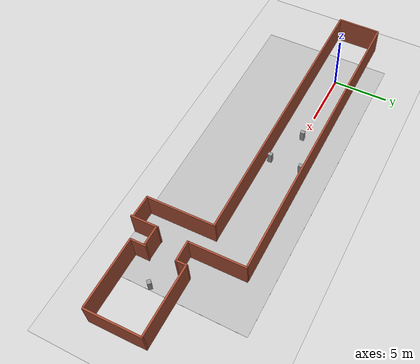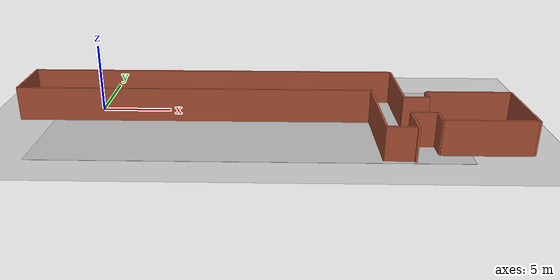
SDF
<sdf version="1.7">
 <world name="default">
  <light name="sun" type="directional">
   <pose>0 0 10 0 -0 0</pose>
   <diffuse>0.8 0.8 0.8 1</diffuse>
   <specular>0.1 0.1 0.1 1</specular>
   <attenuation>
    <range>1000</range>
    <constant>0.9</constant>
    <linear>0.01</linear>
    <quadratic>0.001</quadratic>
   </attenuation>
   <direction>-0.5 0.5 -1</direction>
   <spot><inner_angle>0</inner_angle><outer_angle>0</outer_angle><falloff>0</falloff></spot>
  </light>
  <model name="ground_plane">
   <static>1</static>
   <link name="link">
    <collision name="collision">
     <geometry><plane><normal>0 0 1</normal><size>100 100</size></plane></geometry>
     <surface><friction><ode><mu>100</mu><mu2>50</mu2></ode></friction></surface>
    </collision>
    <visual name="visual">
     <cast_shadows>0</cast_shadows>
     <geometry><plane><normal>0 0 1</normal><size>100 100</size></plane></geometry>
     <material>
      <script><uri>file://media/materials/scripts/gazebo.material</uri><name>Gazebo/Grey</name></script>
     </material>
    </visual>
   </link>
  </model>
  <gravity>0 0 -9.8</gravity>
  <magnetic_field>6e-06 2.3e-05 -4.2e-05</magnetic_field>
  <atmosphere type="adiabatic"/>
  <physics name="default_physics" default="0" type="ode">
   <max_step_size>0.001</max_step_size>
   <real_time_factor>1</real_time_factor>
   <real_time_update_rate>1000</real_time_update_rate>
  </physics>
  <scene><ambient>0.4 0.4 0.4 1</ambient><background>0.7 0.7 0.7 1</background><shadows>1</shadows></scene>
  <spherical_coordinates>
   <surface_model>EARTH_WGS84</surface_model>
   <latitude_deg>0</latitude_deg>
   <longitude_deg>0</longitude_deg>
   <elevation>0</elevation>
   <heading_deg>0</heading_deg>
  </spherical_coordinates>
  <audio><device>default</device></audio>
  <model name="my_ground_plane_0">
   <static>1</static>
   <link name="link">
    <collision name="collision">
     <geometry><plane><normal>0 0 1</normal><size>28.8 12</size></plane></geometry>
     <surface><friction><ode><mu>100</mu><mu2>50</mu2></ode></friction></surface>
    </collision>
    <visual name="visual">
     <cast_shadows>0</cast_shadows>
     <geometry><plane><normal>0 0 1</normal><size>28.8 12</size></plane></geometry>
     <material>
      <script>
       <uri>model://my_ground_plane/materials/scripts</uri>
       <uri>model://my_ground_plane/materials/textures/</uri>
       <name>MyGroundPlane/Image</name>
      </script>
     </material>
    </visual>
   </link>
   <pose>11.2785 -2.18868 0 0 -0 0</pose>
  </model>
  <light name="user_directional_light_0" type="directional">
   <pose>11.0345 -13.0266 1 0 -0 0</pose>
   <diffuse>0.5 0.5 0.5 1</diffuse>
   <specular>0.1 0.1 0.1 1</specular>
   <direction>0.1 0.1 -0.9</direction>
   <attenuation>
    <range>20</range>
    <constant>0.5</constant>
    <linear>0.01</linear>
    <quadratic>0.001</quadratic>
   </attenuation>
   <spot><inner_angle>0</inner_angle><outer_angle>0</outer_angle><falloff>0</falloff></spot>
  </light>
  <light name="user_directional_light_1" type="directional">
   <pose>11.0023 9.1288 1 0 -0 0</pose>
   <diffuse>0.5 0.5 0.5 1</diffuse>
   <specular>0.1 0.1 0.1 1</specular>
   <direction>0.1 0.1 -0.9</direction>
   <attenuation>
    <range>20</range>
    <constant>0.5</constant>
    <linear>0.01</linear>
    <quadratic>0.001</quadratic>
   </attenuation>
   <spot><inner_angle>0</inner_angle><outer_angle>0</outer_angle><falloff>0</falloff></spot>
  </light>
  <model name="first_box_0">
   <link name="link">
    <inertial>
     <mass>0.118815</mass>
     <inertia>
      <ixx>0.011267</ixx>
      <ixy>0</ixy>
      <ixz>0</ixz>
      <iyy>0.0109849</iyy>
      <iyz>0</iyz>
      <izz>0.00244943</izz>
     </inertia>
    </inertial>
    <visual name="visual">
     <geometry><box><size>0.319958 0.371401 1</size></box></geometry>
     <material>
      <script><name>Gazebo/Grey</name><uri>file://media/materials/scripts/gazebo.material</uri></script>
      <shader type="pixel"><normal_map>__default__</normal_map></shader>
     </material>
    </visual>
    <collision name="collision">
     <geometry><box><size>0.330829 0.371401 1</size></box></geometry>
     <surface>
      <friction>
       <ode><mu>1</mu><mu2>1</mu2><fdir1>0 0 0</fdir1><slip1>0</slip1><slip2>0</slip2></ode>
       <torsional>
        <coefficient>1</coefficient>
        <patch_radius>0</patch_radius>
        <surface_radius>0</surface_radius>
        <use_patch_radius>1</use_patch_radius>
        <ode><slip>0</slip></ode>
       </torsional>
      </friction>
      <bounce><restitution_coefficient>0</restitution_coefficient><threshold>1e+06</threshold></bounce>
      <contact>
       <collide_without_contact>0</collide_without_contact>
       <collide_without_contact_bitmask>1</collide_without_contact_bitmask>
       <collide_bitmask>1</collide_bitmask>
       <ode>
        <soft_cfm>0</soft_cfm>
        <soft_erp>0.2</soft_erp>
        <kp>1e+13</kp>
        <kd>1</kd>
        <max_vel>0.01</max_vel>
        <min_depth>0</min_depth>
       </ode>
       <bullet>
        <split_impulse>1</split_impulse>
        <split_impulse_penetration_threshold>-0.01</split_impulse_penetration_threshold>
        <soft_cfm>0</soft_cfm>
        <soft_erp>0.2</soft_erp>
        <kp>1e+13</kp>
        <kd>1</kd>
       </bullet>
      </contact>
     </surface>
    </collision>
   </link>
   <static>0</static>
   <pose>7.54336 -0.032332 0.5 0 3e-06 0.000219</pose>
  </model>
  <model name="first_box_0_clone">
   <link name="link">
    <inertial>
     <mass>0.118815</mass>
     <inertia>
      <ixx>0.011267</ixx>
      <ixy>0</ixy>
      <ixz>0</ixz>
      <iyy>0.0109849</iyy>
      <iyz>0</iyz>
      <izz>0.00244943</izz>
     </inertia>
    </inertial>
    <visual name="visual">
     <geometry><box><size>0.319958 0.371401 1</size></box></geometry>
     <material>
      <script><name>Gazebo/Grey</name><uri>file://media/materials/scripts/gazebo.material</uri></script>
      <shader type="pixel"><normal_map>__default__</normal_map></shader>
     </material>
    </visual>
    <collision name="collision">
     <geometry><box><size>0.330829 0.371401 1</size></box></geometry>
     <surface>
      <friction>
       <ode><mu>1</mu><mu2>1</mu2><fdir1>0 0 0</fdir1><slip1>0</slip1><slip2>0</slip2></ode>
       <torsional>
        <coefficient>1</coefficient>
        <patch_radius>0</patch_radius>
        <surface_radius>0</surface_radius>
        <use_patch_radius>1</use_patch_radius>
        <ode><slip>0</slip></ode>
       </torsional>
      </friction>
      <bounce><restitution_coefficient>0</restitution_coefficient><threshold>1e+06</threshold></bounce>
      <contact>
       <collide_without_contact>0</collide_without_contact>
       <collide_without_contact_bitmask>1</collide_without_contact_bitmask>
       <collide_bitmask>1</collide_bitmask>
       <ode>
        <soft_cfm>0</soft_cfm>
        <soft_erp>0.2</soft_erp>
        <kp>1e+13</kp>
        <kd>1</kd>
        <max_vel>0.01</max_vel>
        <min_depth>0</min_depth>
       </ode>
       <bullet>
        <split_impulse>1</split_impulse>
        <split_impulse_penetration_threshold>-0.01</split_impulse_penetration_threshold>
        <soft_cfm>0</soft_cfm>
        <soft_erp>0.2</soft_erp>
        <kp>1e+13</kp>
        <kd>1</kd>
       </bullet>
      </contact>
     </surface>
    </collision>
   </link>
   <static>0</static>
   <pose>10.8644 1.26843 0.500001 -0 -3e-06 0.00037</pose>
  </model>
  <model name="first_box_0_clone_0">
   <link name="link">
    <inertial>
     <mass>0.118815</mass>
     <inertia>
      <ixx>0.011267</ixx>
      <ixy>0</ixy>
      <ixz>0</ixz>
      <iyy>0.0109849</iyy>
      <iyz>0</iyz>
      <izz>0.00244943</izz>
     </inertia>
    </inertial>
    <visual name="visual">
     <geometry><box><size>0.319958 0.371401 1</size></box></geometry>
     <material>
      <script><name>Gazebo/Grey</name><uri>file://media/materials/scripts/gazebo.material</uri></script>
      <shader type="pixel"><normal_map>__default__</normal_map></shader>
     </material>
    </visual>
    <collision name="collision">
     <geometry><box><size>0.330829 0.371401 1</size></box></geometry>
     <surface>
      <friction>
       <ode><mu>1</mu><mu2>1</mu2><fdir1>0 0 0</fdir1><slip1>0</slip1><slip2>0</slip2></ode>
       <torsional>
        <coefficient>1</coefficient>
        <patch_radius>0</patch_radius>
        <surface_radius>0</surface_radius>
        <use_patch_radius>1</use_patch_radius>
        <ode><slip>0</slip></ode>
       </torsional>
      </friction>
      <bounce><restitution_coefficient>0</restitution_coefficient><threshold>1e+06</threshold></bounce>
      <contact>
       <collide_without_contact>0</collide_without_contact>
       <collide_without_contact_bitmask>1</collide_without_contact_bitmask>
       <collide_bitmask>1</collide_bitmask>
       <ode>
        <soft_cfm>0</soft_cfm>
        <soft_erp>0.2</soft_erp>
        <kp>1e+13</kp>
        <kd>1</kd>
        <max_vel>0.01</max_vel>
        <min_depth>0</min_depth>
       </ode>
       <bullet>
        <split_impulse>1</split_impulse>
        <split_impulse_penetration_threshold>-0.01</split_impulse_penetration_threshold>
        <soft_cfm>0</soft_cfm>
        <soft_erp>0.2</soft_erp>
        <kp>1e+13</kp>
        <kd>1</kd>
       </bullet>
      </contact>
     </surface>
    </collision>
   </link>
   <static>0</static>
   <pose>10.9218 -1.53465 0.499998 -4e-06 6e-06 0.000118</pose>
  </model>
  <model name="9F">
   <link name="Wall_10">
    <pose>-4.68691 0.704536 0 0 -0 0</pose>
    <inertial>
     <inertia><ixx>0</ixx><ixy>0</ixy><ixz>0</ixz><iyy>0</iyy><iyz>0</iyz><izz>0</izz></inertia>
     <mass>0</mass>
    </inertial>
    <visual name="Wall_10_Visual">
     <pose>0 0 1.25 0 -0 0</pose>
     <geometry><box><size>25.4879 0.15 2.5</size></box></geometry>
     <material>
      <script><uri>file://media/materials/scripts/gazebo.material</uri><name>Gazebo/Bricks</name></script>
      <ambient>1 1 1 1</ambient>
      <shader type="pixel"/>
     </material>
     <meta><layer>0</layer></meta>
    </visual>
    <collision name="Wall_10_Collision">
     <pose>0 0 1.25 0 -0 0</pose>
     <geometry><box><size>25.4879 0.15 2.5</size></box></geometry>
     <surface>
      <friction>
       <ode><mu>1</mu><mu2>1</mu2><fdir1>0 0 0</fdir1><slip1>0</slip1><slip2>0</slip2></ode>
       <torsional>
        <coefficient>1</coefficient>
        <patch_radius>0</patch_radius>
        <surface_radius>0</surface_radius>
        <use_patch_radius>1</use_patch_radius>
        <ode><slip>0</slip></ode>
       </torsional>
      </friction>
      <bounce><restitution_coefficient>0</restitution_coefficient><threshold>1e+06</threshold></bounce>
      <contact>
       <collide_without_contact>0</collide_without_contact>
       <collide_without_contact_bitmask>1</collide_without_contact_bitmask>
       <collide_bitmask>1</collide_bitmask>
       <ode>
        <soft_cfm>0</soft_cfm>
        <soft_erp>0.2</soft_erp>
        <kp>1e+13</kp>
        <kd>1</kd>
        <max_vel>0.01</max_vel>
        <min_depth>0</min_depth>
       </ode>
       <bullet>
        <split_impulse>1</split_impulse>
        <split_impulse_penetration_threshold>-0.01</split_impulse_penetration_threshold>
        <soft_cfm>0</soft_cfm>
        <soft_erp>0.2</soft_erp>
        <kp>1e+13</kp>
        <kd>1</kd>
       </bullet>
      </contact>
     </surface>
    </collision>
   </link>
   <link name="Wall_20">
    <pose>10.0454 2.13176 0 0 -0 1.58423</pose>
    <inertial>
     <inertia><ixx>0</ixx><ixy>0</ixy><ixz>0</ixz><iyy>0</iyy><iyz>0</iyz><izz>0</izz></inertia>
     <mass>0</mass>
    </inertial>
    <visual name="Wall_20_Visual">
     <pose>0 0 1.25 0 -0 0</pose>
     <geometry><box><size>4.88983 0.15 2.39214</size></box></geometry>
     <material>
      <script><uri>file://media/materials/scripts/gazebo.material</uri><name>Gazebo/Bricks</name></script>
      <ambient>1 1 1 1</ambient>
      <shader type="pixel"/>
     </material>
     <meta><layer>0</layer></meta>
    </visual>
    <collision name="Wall_20_Collision">
     <pose>0 0 1.25 0 -0 0</pose>
     <geometry><box><size>4.88983 0.15 2.39214</size></box></geometry>
     <surface>
      <friction>
       <ode><mu>1</mu><mu2>1</mu2><fdir1>0 0 0</fdir1><slip1>0</slip1><slip2>0</slip2></ode>
       <torsional>
        <coefficient>1</coefficient>
        <patch_radius>0</patch_radius>
        <surface_radius>0</surface_radius>
        <use_patch_radius>1</use_patch_radius>
        <ode><slip>0</slip></ode>
       </torsional>
      </friction>
      <bounce><restitution_coefficient>0</restitution_coefficient><threshold>1e+06</threshold></bounce>
      <contact>
       <collide_without_contact>0</collide_without_contact>
       <collide_without_contact_bitmask>1</collide_without_contact_bitmask>
       <collide_bitmask>1</collide_bitmask>
       <ode>
        <soft_cfm>0</soft_cfm>
        <soft_erp>0.2</soft_erp>
        <kp>1e+13</kp>
        <kd>1</kd>
        <max_vel>0.01</max_vel>
        <min_depth>0</min_depth>
       </ode>
       <bullet>
        <split_impulse>1</split_impulse>
        <split_impulse_penetration_threshold>-0.01</split_impulse_penetration_threshold>
        <soft_cfm>0</soft_cfm>
        <soft_erp>0.2</soft_erp>
        <kp>1e+13</kp>
        <kd>1</kd>
       </bullet>
      </contact>
     </surface>
    </collision>
   </link>
   <link name="Wall_20_clone">
    <pose>8.02593 -2.23081 0 0 -0 1.58423</pose>
    <inertial>
     <inertia><ixx>0</ixx><ixy>0</ixy><ixz>0</ixz><iyy>0</iyy><iyz>0</iyz><izz>0</izz></inertia>
     <mass>0</mass>
    </inertial>
    <visual name="Wall_20_Visual">
     <pose>0 0 1.25 0 -0 0</pose>
     <geometry><box><size>6.0811 0.15 2.39214</size></box></geometry>
     <material>
      <script><uri>file://media/materials/scripts/gazebo.material</uri><name>Gazebo/Bricks</name></script>
      <ambient>1 1 1 1</ambient>
      <shader type="pixel"/>
     </material>
     <meta><layer>0</layer></meta>
    </visual>
    <collision name="Wall_20_Collision">
     <pose>0 0 1.25 0 -0 0</pose>
     <geometry><box><size>6.0811 0.15 2.39214</size></box></geometry>
     <surface>
      <friction>
       <ode><mu>1</mu><mu2>1</mu2><fdir1>0 0 0</fdir1><slip1>0</slip1><slip2>0</slip2></ode>
       <torsional>
        <coefficient>1</coefficient>
        <patch_radius>0</patch_radius>
        <surface_radius>0</surface_radius>
        <use_patch_radius>1</use_patch_radius>
        <ode><slip>0</slip></ode>
       </torsional>
      </friction>
      <bounce><restitution_coefficient>0</restitution_coefficient><threshold>1e+06</threshold></bounce>
      <contact>
       <collide_without_contact>0</collide_without_contact>
       <collide_without_contact_bitmask>1</collide_without_contact_bitmask>
       <collide_bitmask>1</collide_bitmask>
       <ode>
        <soft_cfm>0</soft_cfm>
        <soft_erp>0.2</soft_erp>
        <kp>1e+13</kp>
        <kd>1</kd>
        <max_vel>0.01</max_vel>
        <min_depth>0</min_depth>
       </ode>
       <bullet>
        <split_impulse>1</split_impulse>
        <split_impulse_penetration_threshold>-0.01</split_impulse_penetration_threshold>
        <soft_cfm>0</soft_cfm>
        <soft_erp>0.2</soft_erp>
        <kp>1e+13</kp>
        <kd>1</kd>
       </bullet>
      </contact>
     </surface>
    </collision>
   </link>
   <link name="Wall_20_clone_0">
    <pose>10.9444 -0.401375 0 0 0 -3.12541</pose>
    <inertial>
     <inertia><ixx>0</ixx><ixy>0</ixy><ixz>0</ixz><iyy>0</iyy><iyz>0</iyz><izz>0</izz></inertia>
     <mass>0</mass>
    </inertial>
    <visual name="Wall_20_Visual">
     <pose>0 0 1.25 0 -0 0</pose>
     <geometry><box><size>1.8756 0.15 2.39214</size></box></geometry>
     <material>
      <script><uri>file://media/materials/scripts/gazebo.material</uri><name>Gazebo/Bricks</name></script>
      <ambient>1 1 1 1</ambient>
      <shader type="pixel"/>
     </material>
     <meta><layer>0</layer></meta>
    </visual>
    <collision name="Wall_20_Collision">
     <pose>0 0 1.25 0 -0 0</pose>
     <geometry><box><size>1.8756 0.15 2.39214</size></box></geometry>
     <surface>
      <friction>
       <ode><mu>1</mu><mu2>1</mu2><fdir1>0 0 0</fdir1><slip1>0</slip1><slip2>0</slip2></ode>
       <torsional>
        <coefficient>1</coefficient>
        <patch_radius>0</patch_radius>
        <surface_radius>0</surface_radius>
        <use_patch_radius>1</use_patch_radius>
        <ode><slip>0</slip></ode>
       </torsional>
      </friction>
      <bounce><restitution_coefficient>0</restitution_coefficient><threshold>1e+06</threshold></bounce>
      <contact>
       <collide_without_contact>0</collide_without_contact>
       <collide_without_contact_bitmask>1</collide_without_contact_bitmask>
       <collide_bitmask>1</collide_bitmask>
       <ode>
        <soft_cfm>0</soft_cfm>
        <soft_erp>0.2</soft_erp>
        <kp>1e+13</kp>
        <kd>1</kd>
        <max_vel>0.01</max_vel>
        <min_depth>0</min_depth>
       </ode>
       <bullet>
        <split_impulse>1</split_impulse>
        <split_impulse_penetration_threshold>-0.01</split_impulse_penetration_threshold>
        <soft_cfm>0</soft_cfm>
        <soft_erp>0.2</soft_erp>
        <kp>1e+13</kp>
        <kd>1</kd>
       </bullet>
      </contact>
     </surface>
    </collision>
   </link>
   <link name="Wall_20_clone_0_clone">
    <pose>9.04606 -5.24157 0 0 -0 3.12836</pose>
    <inertial>
     <inertia><ixx>0</ixx><ixy>0</ixy><ixz>0</ixz><iyy>0</iyy><iyz>0</iyz><izz>0</izz></inertia>
     <mass>0</mass>
    </inertial>
    <visual name="Wall_20_Visual">
     <pose>0 0 1.25 0 -0 0</pose>
     <geometry><box><size>2.02972 0.15 2.39214</size></box></geometry>
     <material>
      <script><uri>file://media/materials/scripts/gazebo.material</uri><name>Gazebo/Bricks</name></script>
      <ambient>1 1 1 1</ambient>
      <shader type="pixel"/>
     </material>
     <meta><layer>0</layer></meta>
    </visual>
    <collision name="Wall_20_Collision">
     <pose>0 0 1.25 0 -0 0</pose>
     <geometry><box><size>2.02972 0.15 2.39214</size></box></geometry>
     <surface>
      <friction>
       <ode><mu>1</mu><mu2>1</mu2><fdir1>0 0 0</fdir1><slip1>0</slip1><slip2>0</slip2></ode>
       <torsional>
        <coefficient>1</coefficient>
        <patch_radius>0</patch_radius>
        <surface_radius>0</surface_radius>
        <use_patch_radius>1</use_patch_radius>
        <ode><slip>0</slip></ode>
       </torsional>
      </friction>
      <bounce><restitution_coefficient>0</restitution_coefficient><threshold>1e+06</threshold></bounce>
      <contact>
       <collide_without_contact>0</collide_without_contact>
       <collide_without_contact_bitmask>1</collide_without_contact_bitmask>
       <collide_bitmask>1</collide_bitmask>
       <ode>
        <soft_cfm>0</soft_cfm>
        <soft_erp>0.2</soft_erp>
        <kp>1e+13</kp>
        <kd>1</kd>
        <max_vel>0.01</max_vel>
        <min_depth>0</min_depth>
       </ode>
       <bullet>
        <split_impulse>1</split_impulse>
        <split_impulse_penetration_threshold>-0.01</split_impulse_penetration_threshold>
        <soft_cfm>0</soft_cfm>
        <soft_erp>0.2</soft_erp>
        <kp>1e+13</kp>
        <kd>1</kd>
       </bullet>
      </contact>
     </surface>
    </collision>
   </link>
   <link name="Wall_20_clone_1">
    <pose>11.7838 0.070845 0 0 -0 1.58423</pose>
    <inertial>
     <inertia><ixx>0</ixx><ixy>0</ixy><ixz>0</ixz><iyy>0</iyy><iyz>0</iyz><izz>0</izz></inertia>
     <mass>0</mass>
    </inertial>
    <visual name="Wall_20_Visual">
     <pose>0 0 1.25 0 -0 0</pose>
     <geometry><box><size>1.00854 0.15 2.39214</size></box></geometry>
     <material>
      <script><uri>file://media/materials/scripts/gazebo.material</uri><name>Gazebo/Bricks</name></script>
      <ambient>1 1 1 1</ambient>
      <shader type="pixel"/>
     </material>
     <meta><layer>0</layer></meta>
    </visual>
    <collision name="Wall_20_Collision">
     <pose>0 0 1.25 0 -0 0</pose>
     <geometry><box><size>1.00854 0.15 2.39214</size></box></geometry>
     <surface>
      <friction>
       <ode><mu>1</mu><mu2>1</mu2><fdir1>0 0 0</fdir1><slip1>0</slip1><slip2>0</slip2></ode>
       <torsional>
        <coefficient>1</coefficient>
        <patch_radius>0</patch_radius>
        <surface_radius>0</surface_radius>
        <use_patch_radius>1</use_patch_radius>
        <ode><slip>0</slip></ode>
       </torsional>
      </friction>
      <bounce><restitution_coefficient>0</restitution_coefficient><threshold>1e+06</threshold></bounce>
      <contact>
       <collide_without_contact>0</collide_without_contact>
       <collide_without_contact_bitmask>1</collide_without_contact_bitmask>
       <collide_bitmask>1</collide_bitmask>
       <ode>
        <soft_cfm>0</soft_cfm>
        <soft_erp>0.2</soft_erp>
        <kp>1e+13</kp>
        <kd>1</kd>
        <max_vel>0.01</max_vel>
        <min_depth>0</min_depth>
       </ode>
       <bullet>
        <split_impulse>1</split_impulse>
        <split_impulse_penetration_threshold>-0.01</split_impulse_penetration_threshold>
        <soft_cfm>0</soft_cfm>
        <soft_erp>0.2</soft_erp>
        <kp>1e+13</kp>
        <kd>1</kd>
       </bullet>
      </contact>
     </surface>
    </collision>
   </link>
   <link name="Wall_20_clone_1_clone">
    <pose>17.8251 -1.91064 0 0 -0 1.58423</pose>
    <inertial>
     <inertia><ixx>0</ixx><ixy>0</ixy><ixz>0</ixz><iyy>0</iyy><iyz>0</iyz><izz>0</izz></inertia>
     <mass>0</mass>
    </inertial>
    <visual name="Wall_20_Visual">
     <pose>0 0 1.25 0 -0 0</pose>
     <geometry><box><size>4.95889 0.15 2.39214</size></box></geometry>
     <material>
      <script><uri>file://media/materials/scripts/gazebo.material</uri><name>Gazebo/Bricks</name></script>
      <ambient>1 1 1 1</ambient>
      <shader type="pixel"/>
     </material>
     <meta><layer>0</layer></meta>
    </visual>
    <collision name="Wall_20_Collision">
     <pose>0 0 1.25 0 -0 0</pose>
     <geometry><box><size>4.95889 0.15 2.39214</size></box></geometry>
     <surface>
      <friction>
       <ode><mu>1</mu><mu2>1</mu2><fdir1>0 0 0</fdir1><slip1>0</slip1><slip2>0</slip2></ode>
       <torsional>
        <coefficient>1</coefficient>
        <patch_radius>0</patch_radius>
        <surface_radius>0</surface_radius>
        <use_patch_radius>1</use_patch_radius>
        <ode><slip>0</slip></ode>
       </torsional>
      </friction>
      <bounce><restitution_coefficient>0</restitution_coefficient><threshold>1e+06</threshold></bounce>
      <contact>
       <collide_without_contact>0</collide_without_contact>
       <collide_without_contact_bitmask>1</collide_without_contact_bitmask>
       <collide_bitmask>1</collide_bitmask>
       <ode>
        <soft_cfm>0</soft_cfm>
        <soft_erp>0.2</soft_erp>
        <kp>1e+13</kp>
        <kd>1</kd>
        <max_vel>0.01</max_vel>
        <min_depth>0</min_depth>
       </ode>
       <bullet>
        <split_impulse>1</split_impulse>
        <split_impulse_penetration_threshold>-0.01</split_impulse_penetration_threshold>
        <soft_cfm>0</soft_cfm>
        <soft_erp>0.2</soft_erp>
        <kp>1e+13</kp>
        <kd>1</kd>
       </bullet>
      </contact>
     </surface>
    </collision>
   </link>
   <link name="Wall_20_clone_1_clone_0">
    <pose>11.7674 -3.69427 0 0 -0 1.58423</pose>
    <inertial>
     <inertia><ixx>0</ixx><ixy>0</ixy><ixz>0</ixz><iyy>0</iyy><iyz>0</iyz><izz>0</izz></inertia>
     <mass>0</mass>
    </inertial>
    <visual name="Wall_20_Visual">
     <pose>0 0 1.25 0 -0 0</pose>
     <geometry><box><size>1.36231 0.15 2.39214</size></box></geometry>
     <material>
      <script><uri>file://media/materials/scripts/gazebo.material</uri><name>Gazebo/Bricks</name></script>
      <ambient>1 1 1 1</ambient>
      <shader type="pixel"/>
     </material>
     <meta><layer>0</layer></meta>
    </visual>
    <collision name="Wall_20_Collision">
     <pose>0 0 1.25 0 -0 0</pose>
     <geometry><box><size>1.36231 0.15 2.39214</size></box></geometry>
     <surface>
      <friction>
       <ode><mu>1</mu><mu2>1</mu2><fdir1>0 0 0</fdir1><slip1>0</slip1><slip2>0</slip2></ode>
       <torsional>
        <coefficient>1</coefficient>
        <patch_radius>0</patch_radius>
        <surface_radius>0</surface_radius>
        <use_patch_radius>1</use_patch_radius>
        <ode><slip>0</slip></ode>
       </torsional>
      </friction>
      <bounce><restitution_coefficient>0</restitution_coefficient><threshold>1e+06</threshold></bounce>
      <contact>
       <collide_without_contact>0</collide_without_contact>
       <collide_without_contact_bitmask>1</collide_without_contact_bitmask>
       <collide_bitmask>1</collide_bitmask>
       <ode>
        <soft_cfm>0</soft_cfm>
        <soft_erp>0.2</soft_erp>
        <kp>1e+13</kp>
        <kd>1</kd>
        <max_vel>0.01</max_vel>
        <min_depth>0</min_depth>
       </ode>
       <bullet>
        <split_impulse>1</split_impulse>
        <split_impulse_penetration_threshold>-0.01</split_impulse_penetration_threshold>
        <soft_cfm>0</soft_cfm>
        <soft_erp>0.2</soft_erp>
        <kp>1e+13</kp>
        <kd>1</kd>
       </bullet>
      </contact>
     </surface>
    </collision>
   </link>
   <link name="Wall_20_clone_1_clone_1">
    <pose>10.0302 -4.23911 0 0 -0 1.58423</pose>
    <inertial>
     <inertia><ixx>0</ixx><ixy>0</ixy><ixz>0</ixz><iyy>0</iyy><iyz>0</iyz><izz>0</izz></inertia>
     <mass>0</mass>
    </inertial>
    <visual name="Wall_20_Visual">
     <pose>0 0 1.25 0 -0 0</pose>
     <geometry><box><size>2.43343 0.15 2.39214</size></box></geometry>
     <material>
      <script><uri>file://media/materials/scripts/gazebo.material</uri><name>Gazebo/Bricks</name></script>
      <ambient>1 1 1 1</ambient>
      <shader type="pixel"/>
     </material>
     <meta><layer>0</layer></meta>
    </visual>
    <collision name="Wall_20_Collision">
     <pose>0 0 1.25 0 -0 0</pose>
     <geometry><box><size>2.43343 0.15 2.39214</size></box></geometry>
     <surface>
      <friction>
       <ode><mu>1</mu><mu2>1</mu2><fdir1>0 0 0</fdir1><slip1>0</slip1><slip2>0</slip2></ode>
       <torsional>
        <coefficient>1</coefficient>
        <patch_radius>0</patch_radius>
        <surface_radius>0</surface_radius>
        <use_patch_radius>1</use_patch_radius>
        <ode><slip>0</slip></ode>
       </torsional>
      </friction>
      <bounce><restitution_coefficient>0</restitution_coefficient><threshold>1e+06</threshold></bounce>
      <contact>
       <collide_without_contact>0</collide_without_contact>
       <collide_without_contact_bitmask>1</collide_without_contact_bitmask>
       <collide_bitmask>1</collide_bitmask>
       <ode>
        <soft_cfm>0</soft_cfm>
        <soft_erp>0.2</soft_erp>
        <kp>1e+13</kp>
        <kd>1</kd>
        <max_vel>0.01</max_vel>
        <min_depth>0</min_depth>
       </ode>
       <bullet>
        <split_impulse>1</split_impulse>
        <split_impulse_penetration_threshold>-0.01</split_impulse_penetration_threshold>
        <soft_cfm>0</soft_cfm>
        <soft_erp>0.2</soft_erp>
        <kp>1e+13</kp>
        <kd>1</kd>
       </bullet>
      </contact>
     </surface>
    </collision>
   </link>
   <link name="Wall_4">
    <pose>-17.3603 2.64522 0 0 -0 1.5708</pose>
    <visual name="Wall_4_Visual">
     <pose>0 0 1.25 0 -0 0</pose>
     <geometry><box><size>3.75 0.15 2.5</size></box></geometry>
     <material>
      <script><uri>file://media/materials/scripts/gazebo.material</uri><name>Gazebo/Bricks</name></script>
      <ambient>1 1 1 1</ambient>
      <shader type="pixel"/>
     </material>
     <meta><layer>0</layer></meta>
    </visual>
    <collision name="Wall_4_Collision">
     <pose>0 0 1.25 0 -0 0</pose>
     <geometry><box><size>3.75 0.15 2.5</size></box></geometry>
     <surface>
      <friction>
       <ode><mu>1</mu><mu2>1</mu2><fdir1>0 0 0</fdir1><slip1>0</slip1><slip2>0</slip2></ode>
       <torsional>
        <coefficient>1</coefficient>
        <patch_radius>0</patch_radius>
        <surface_radius>0</surface_radius>
        <use_patch_radius>1</use_patch_radius>
        <ode><slip>0</slip></ode>
       </torsional>
      </friction>
      <bounce><restitution_coefficient>0</restitution_coefficient><threshold>1e+06</threshold></bounce>
      <contact>
       <collide_without_contact>0</collide_without_contact>
       <collide_without_contact_bitmask>1</collide_without_contact_bitmask>
       <collide_bitmask>1</collide_bitmask>
       <ode>
        <soft_cfm>0</soft_cfm>
        <soft_erp>0.2</soft_erp>
        <kp>1e+13</kp>
        <kd>1</kd>
        <max_vel>0.01</max_vel>
        <min_depth>0</min_depth>
       </ode>
       <bullet>
        <split_impulse>1</split_impulse>
        <split_impulse_penetration_threshold>-0.01</split_impulse_penetration_threshold>
        <soft_cfm>0</soft_cfm>
        <soft_erp>0.2</soft_erp>
        <kp>1e+13</kp>
        <kd>1</kd>
       </bullet>
      </contact>
     </surface>
    </collision>
   </link>
   <link name="Wall_6">
    <pose>-3.72942 4.51625 0 0 -0 0</pose>
    <inertial>
     <inertia><ixx>0</ixx><ixy>0</ixy><ixz>0</ixz><iyy>0</iyy><iyz>0</iyz><izz>0</izz></inertia>
     <mass>0</mass>
    </inertial>
    <visual name="Wall_6_Visual">
     <pose>0 0 1.25 0 -0 0</pose>
     <geometry><box><size>27.3889 0.15 2.5</size></box></geometry>
     <material>
      <script><uri>file://media/materials/scripts/gazebo.material</uri><name>Gazebo/Bricks</name></script>
      <ambient>1 1 1 1</ambient>
      <shader type="pixel"/>
     </material>
     <meta><layer>0</layer></meta>
    </visual>
    <collision name="Wall_6_Collision">
     <pose>0 0 1.25 0 -0 0</pose>
     <geometry><box><size>27.3889 0.15 2.5</size></box></geometry>
     <surface>
      <friction>
       <ode><mu>1</mu><mu2>1</mu2><fdir1>0 0 0</fdir1><slip1>0</slip1><slip2>0</slip2></ode>
       <torsional>
        <coefficient>1</coefficient>
        <patch_radius>0</patch_radius>
        <surface_radius>0</surface_radius>
        <use_patch_radius>1</use_patch_radius>
        <ode><slip>0</slip></ode>
       </torsional>
      </friction>
      <bounce><restitution_coefficient>0</restitution_coefficient><threshold>1e+06</threshold></bounce>
      <contact>
       <collide_without_contact>0</collide_without_contact>
       <collide_without_contact_bitmask>1</collide_without_contact_bitmask>
       <collide_bitmask>1</collide_bitmask>
       <ode>
        <soft_cfm>0</soft_cfm>
        <soft_erp>0.2</soft_erp>
        <kp>1e+13</kp>
        <kd>1</kd>
        <max_vel>0.01</max_vel>
        <min_depth>0</min_depth>
       </ode>
       <bullet>
        <split_impulse>1</split_impulse>
        <split_impulse_penetration_threshold>-0.01</split_impulse_penetration_threshold>
        <soft_cfm>0</soft_cfm>
        <soft_erp>0.2</soft_erp>
        <kp>1e+13</kp>
        <kd>1</kd>
       </bullet>
      </contact>
     </surface>
    </collision>
   </link>
   <link name="Wall_6_clone">
    <pose>14.793 0.489118 0 0 -0 0</pose>
    <inertial>
     <inertia><ixx>0</ixx><ixy>0</ixy><ixz>0</ixz><iyy>0</iyy><iyz>0</iyz><izz>0</izz></inertia>
     <mass>0</mass>
    </inertial>
    <visual name="Wall_6_Visual">
     <pose>0 0 1.25 0 -0 0</pose>
     <geometry><box><size>5.98773 0.15 2.5</size></box></geometry>
     <material>
      <script><uri>file://media/materials/scripts/gazebo.material</uri><name>Gazebo/Bricks</name></script>
      <ambient>1 1 1 1</ambient>
      <shader type="pixel"/>
     </material>
     <meta><layer>0</layer></meta>
    </visual>
    <collision name="Wall_6_Collision">
     <pose>0 0 1.25 0 -0 0</pose>
     <geometry><box><size>5.98773 0.15 2.5</size></box></geometry>
     <surface>
      <friction>
       <ode><mu>1</mu><mu2>1</mu2><fdir1>0 0 0</fdir1><slip1>0</slip1><slip2>0</slip2></ode>
       <torsional>
        <coefficient>1</coefficient>
        <patch_radius>0</patch_radius>
        <surface_radius>0</surface_radius>
        <use_patch_radius>1</use_patch_radius>
        <ode><slip>0</slip></ode>
       </torsional>
      </friction>
      <bounce><restitution_coefficient>0</restitution_coefficient><threshold>1e+06</threshold></bounce>
      <contact>
       <collide_without_contact>0</collide_without_contact>
       <collide_without_contact_bitmask>1</collide_without_contact_bitmask>
       <collide_bitmask>1</collide_bitmask>
       <ode>
        <soft_cfm>0</soft_cfm>
        <soft_erp>0.2</soft_erp>
        <kp>1e+13</kp>
        <kd>1</kd>
        <max_vel>0.01</max_vel>
        <min_depth>0</min_depth>
       </ode>
       <bullet>
        <split_impulse>1</split_impulse>
        <split_impulse_penetration_threshold>-0.01</split_impulse_penetration_threshold>
        <soft_cfm>0</soft_cfm>
        <soft_erp>0.2</soft_erp>
        <kp>1e+13</kp>
        <kd>1</kd>
       </bullet>
      </contact>
     </surface>
    </collision>
   </link>
   <link name="Wall_6_clone_clone">
    <pose>14.7874 -4.34129 0 0 -0 0</pose>
    <inertial>
     <inertia><ixx>0</ixx><ixy>0</ixy><ixz>0</ixz><iyy>0</iyy><iyz>0</iyz><izz>0</izz></inertia>
     <mass>0</mass>
    </inertial>
    <visual name="Wall_6_Visual">
     <pose>0 0 1.25 0 -0 0</pose>
     <geometry><box><size>5.98773 0.15 2.5</size></box></geometry>
     <material>
      <script><uri>file://media/materials/scripts/gazebo.material</uri><name>Gazebo/Bricks</name></script>
      <ambient>1 1 1 1</ambient>
      <shader type="pixel"/>
     </material>
     <meta><layer>0</layer></meta>
    </visual>
    <collision name="Wall_6_Collision">
     <pose>0 0 1.25 0 -0 0</pose>
     <geometry><box><size>5.98773 0.15 2.5</size></box></geometry>
     <surface>
      <friction>
       <ode><mu>1</mu><mu2>1</mu2><fdir1>0 0 0</fdir1><slip1>0</slip1><slip2>0</slip2></ode>
       <torsional>
        <coefficient>1</coefficient>
        <patch_radius>0</patch_radius>
        <surface_radius>0</surface_radius>
        <use_patch_radius>1</use_patch_radius>
        <ode><slip>0</slip></ode>
       </torsional>
      </friction>
      <bounce><restitution_coefficient>0</restitution_coefficient><threshold>1e+06</threshold></bounce>
      <contact>
       <collide_without_contact>0</collide_without_contact>
       <collide_without_contact_bitmask>1</collide_without_contact_bitmask>
       <collide_bitmask>1</collide_bitmask>
       <ode>
        <soft_cfm>0</soft_cfm>
        <soft_erp>0.2</soft_erp>
        <kp>1e+13</kp>
        <kd>1</kd>
        <max_vel>0.01</max_vel>
        <min_depth>0</min_depth>
       </ode>
       <bullet>
        <split_impulse>1</split_impulse>
        <split_impulse_penetration_threshold>-0.01</split_impulse_penetration_threshold>
        <soft_cfm>0</soft_cfm>
        <soft_erp>0.2</soft_erp>
        <kp>1e+13</kp>
        <kd>1</kd>
       </bullet>
      </contact>
     </surface>
    </collision>
   </link>
   <link name="Wall_6_clone_clone_0">
    <pose>10.8678 -3.14361 0 0 -0 0</pose>
    <inertial>
     <inertia><ixx>0</ixx><ixy>0</ixy><ixz>0</ixz><iyy>0</iyy><iyz>0</iyz><izz>0</izz></inertia>
     <mass>0</mass>
    </inertial>
    <visual name="Wall_6_Visual">
     <pose>0 0 1.25 0 -0 0</pose>
     <geometry><box><size>1.64738 0.15 2.5</size></box></geometry>
     <material>
      <script><uri>file://media/materials/scripts/gazebo.material</uri><name>Gazebo/Bricks</name></script>
      <ambient>1 1 1 1</ambient>
      <shader type="pixel"/>
     </material>
     <meta><layer>0</layer></meta>
    </visual>
    <collision name="Wall_6_Collision">
     <pose>0 0 1.25 0 -0 0</pose>
     <geometry><box><size>1.64738 0.15 2.5</size></box></geometry>
     <surface>
      <friction>
       <ode><mu>1</mu><mu2>1</mu2><fdir1>0 0 0</fdir1><slip1>0</slip1><slip2>0</slip2></ode>
       <torsional>
        <coefficient>1</coefficient>
        <patch_radius>0</patch_radius>
        <surface_radius>0</surface_radius>
        <use_patch_radius>1</use_patch_radius>
        <ode><slip>0</slip></ode>
       </torsional>
      </friction>
      <bounce><restitution_coefficient>0</restitution_coefficient><threshold>1e+06</threshold></bounce>
      <contact>
       <collide_without_contact>0</collide_without_contact>
       <collide_without_contact_bitmask>1</collide_without_contact_bitmask>
       <collide_bitmask>1</collide_bitmask>
       <ode>
        <soft_cfm>0</soft_cfm>
        <soft_erp>0.2</soft_erp>
        <kp>1e+13</kp>
        <kd>1</kd>
        <max_vel>0.01</max_vel>
        <min_depth>0</min_depth>
       </ode>
       <bullet>
        <split_impulse>1</split_impulse>
        <split_impulse_penetration_threshold>-0.01</split_impulse_penetration_threshold>
        <soft_cfm>0</soft_cfm>
        <soft_erp>0.2</soft_erp>
        <kp>1e+13</kp>
        <kd>1</kd>
       </bullet>
      </contact>
     </surface>
    </collision>
   </link>
   <static>1</static>
   <pose>11.812 -2.67968 0 0 -0 0</pose>
  </model>
  <model name="first_box_0_clone_1">
   <link name="link">
    <inertial>
     <mass>0.118815</mass>
     <inertia>
      <ixx>0.011267</ixx>
      <ixy>0</ixy>
      <ixz>0</ixz>
      <iyy>0.0109849</iyy>
      <iyz>0</iyz>
      <izz>0.00244943</izz>
     </inertia>
    </inertial>
    <visual name="visual">
     <geometry><box><size>0.319958 0.371401 1</size></box></geometry>
     <material>
      <script><name>Gazebo/Grey</name><uri>file://media/materials/scripts/gazebo.material</uri></script>
      <shader type="pixel"><normal_map>__default__</normal_map></shader>
     </material>
    </visual>
    <collision name="collision">
     <geometry><box><size>0.330829 0.371401 1</size></box></geometry>
     <surface>
      <friction>
       <ode><mu>1</mu><mu2>1</mu2><fdir1>0 0 0</fdir1><slip1>0</slip1><slip2>0</slip2></ode>
       <torsional>
        <coefficient>1</coefficient>
        <patch_radius>0</patch_radius>
        <surface_radius>0</surface_radius>
        <use_patch_radius>1</use_patch_radius>
        <ode><slip>0</slip></ode>
       </torsional>
      </friction>
      <bounce><restitution_coefficient>0</restitution_coefficient><threshold>1e+06</threshold></bounce>
      <contact>
       <collide_without_contact>0</collide_without_contact>
       <collide_without_contact_bitmask>1</collide_without_contact_bitmask>
       <collide_bitmask>1</collide_bitmask>
       <ode>
        <soft_cfm>0</soft_cfm>
        <soft_erp>0.2</soft_erp>
        <kp>1e+13</kp>
        <kd>1</kd>
        <max_vel>0.01</max_vel>
        <min_depth>0</min_depth>
       </ode>
       <bullet>
        <split_impulse>1</split_impulse>
        <split_impulse_penetration_threshold>-0.01</split_impulse_penetration_threshold>
        <soft_cfm>0</soft_cfm>
        <soft_erp>0.2</soft_erp>
        <kp>1e+13</kp>
        <kd>1</kd>
       </bullet>
      </contact>
     </surface>
    </collision>
   </link>
   <static>0</static>
   <pose>25.4581 -4.48846 0.499993 -2e-06 -2e-06 -0.814201</pose>
  </model>
 </world>
</sdf>
